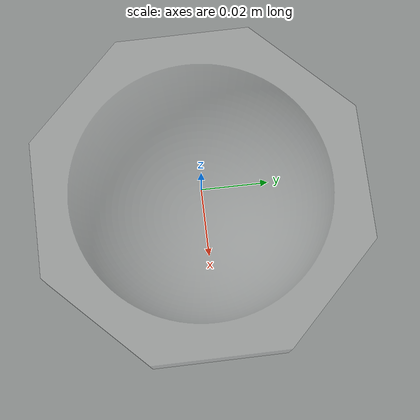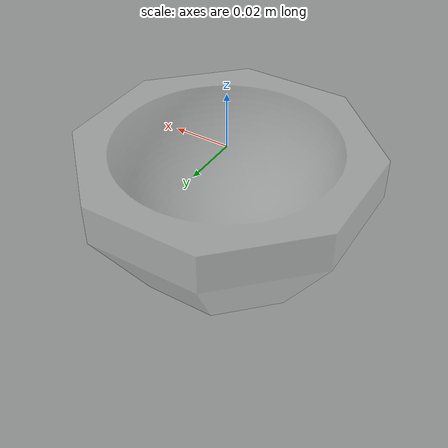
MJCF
<mujoco model="mortar-visual">
  <asset>
    <mesh file="meshes/mortar.stl" name="mortar_mesh" scale="1 1 1"/>
    <texture file="../textures/brass-ambra.png" type="2d" name="tex-brass-ambra" />
    <material name="mortar" reflectance="0.7" texrepeat="15 15" texture="tex-brass-ambra" texuniform="true"/>
  </asset>
  <worldbody>
    <body>
      <body name="object">
        <geom pos="0 0 0" mesh="mortar_mesh" type="mesh" rgba="0.8 0.8 0.8 0.3"  conaffinity="0" contype="0"  group="1" material="mortar" mass="1000"/>
      </body>
      <site rgba="0 0 0 0" size="0.005" pos="0 0 -0.045" name="bottom_site"/>
      <site rgba="0 0 0 0" size="0.005" pos="0 0 0.03" name="top_site"/>
      <site rgba="0 0 0 0" size="0.005" pos="0.03 0.03 0" name="horizontal_radius_site"/>
    </body>
  </worldbody>
</mujoco>
